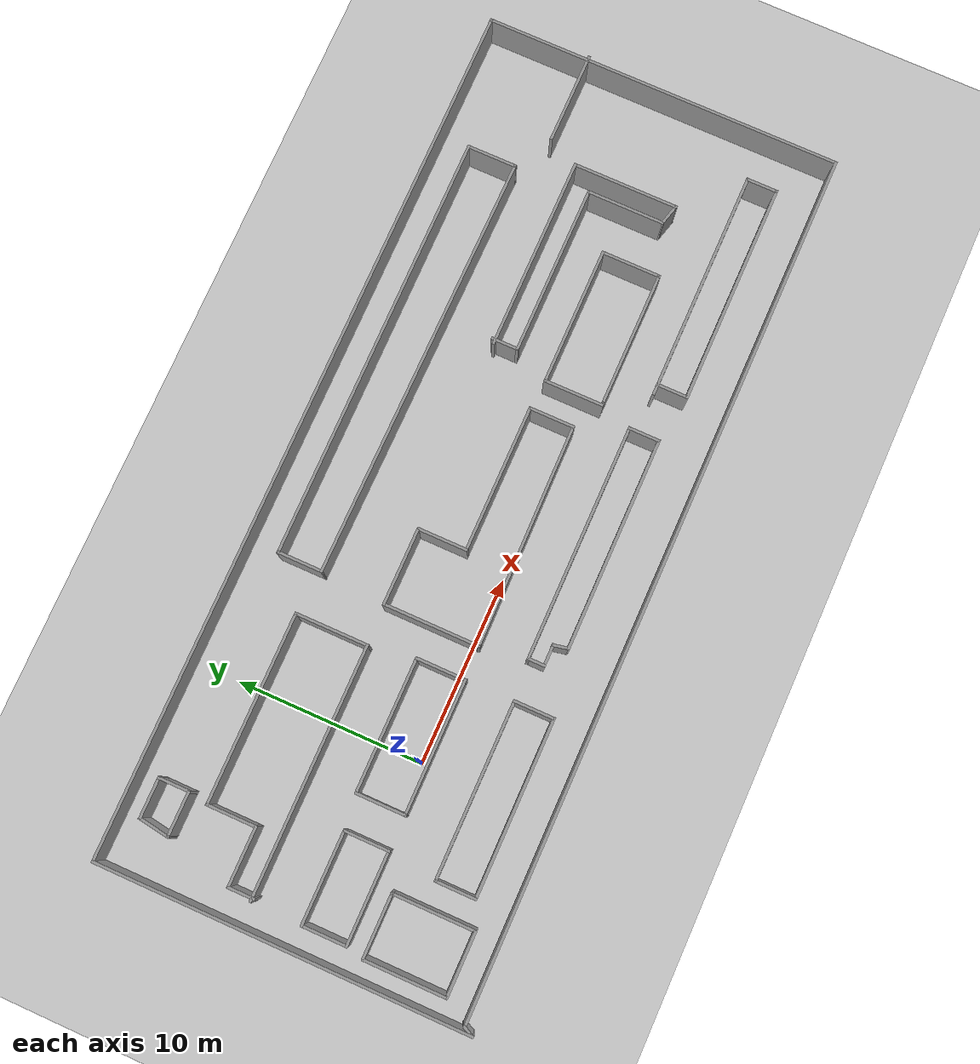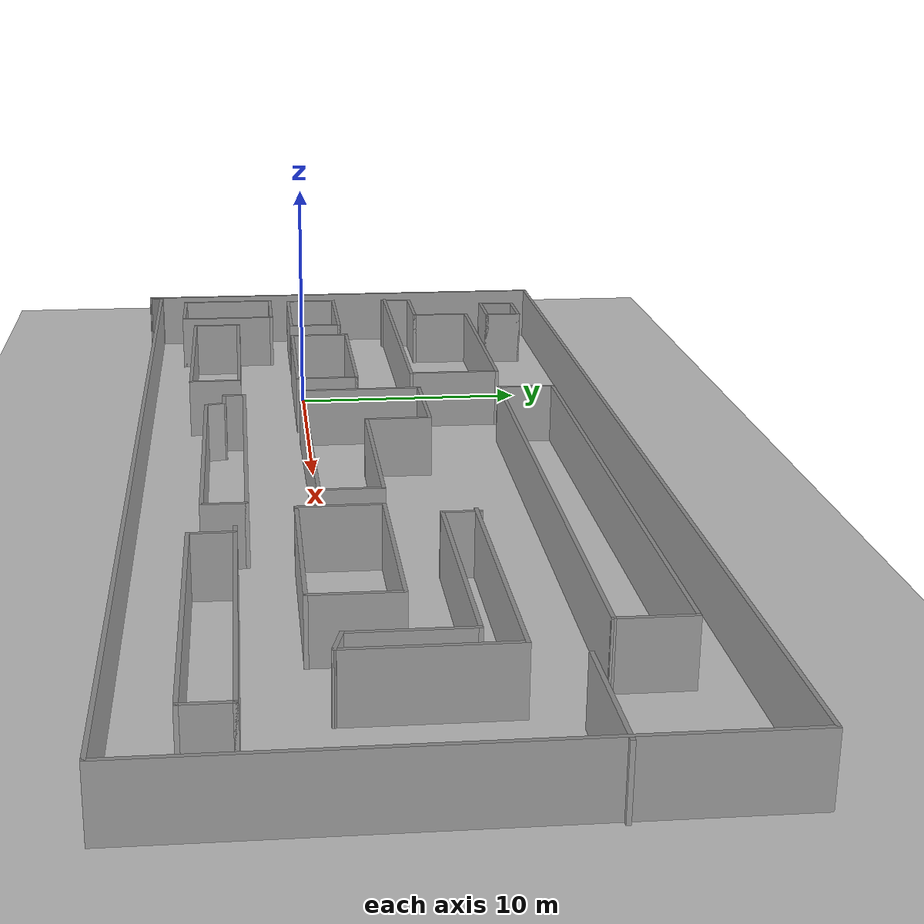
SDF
<sdf version="1.7">
 <world name="default">
  <light name="sun" type="directional">
   <pose>0 0 10 0 -0 0</pose>
   <diffuse>0.8 0.8 0.8 1</diffuse>
   <specular>0.2 0.2 0.2 1</specular>
   <attenuation>
    <range>1000</range>
    <constant>0.9</constant>
    <linear>0.01</linear>
    <quadratic>0.001</quadratic>
   </attenuation>
   <direction>-0.5 0.1 -0.9</direction>
   <spot><inner_angle>0</inner_angle><outer_angle>0</outer_angle><falloff>0</falloff></spot>
  </light>
  <model name="ground_plane">
   <static>1</static>
   <link name="link">
    <collision name="collision">
     <geometry><plane><normal>0 0 1</normal><size>100 100</size></plane></geometry>
     <surface>
      <contact><collide_bitmask>65535</collide_bitmask></contact>
      <friction><ode><mu>100</mu><mu2>50</mu2></ode></friction>
     </surface>
    </collision>
    <visual name="visual">
     <cast_shadows>0</cast_shadows>
     <geometry><plane><normal>0 0 1</normal><size>100 100</size></plane></geometry>
     <material>
      <script><uri>file://media/materials/scripts/gazebo.material</uri><name>Gazebo/Grey</name></script>
     </material>
    </visual>
   </link>
  </model>
  <gravity>0 0 -9.8</gravity>
  <magnetic_field>6e-06 2.3e-05 -4.2e-05</magnetic_field>
  <atmosphere type="adiabatic"/>
  <physics type="ode">
   <max_step_size>0.001</max_step_size>
   <real_time_factor>1</real_time_factor>
   <real_time_update_rate>1000</real_time_update_rate>
  </physics>
  <scene><ambient>0.4 0.4 0.4 1</ambient><background>0.7 0.7 0.7 1</background><shadows>1</shadows></scene>
  <spherical_coordinates>
   <surface_model>EARTH_WGS84</surface_model>
   <latitude_deg>0</latitude_deg>
   <longitude_deg>0</longitude_deg>
   <elevation>0</elevation>
   <heading_deg>0</heading_deg>
  </spherical_coordinates>
  <model name="factory">
   <pose>12.988 2.43219 0 0 -0 0</pose>
   <link name="Wall_0">
    <collision name="Wall_0_Collision">
     <geometry><box><size>47 0.15 2.5</size></box></geometry>
     <pose>0 0 1.25 0 -0 0</pose>
    </collision>
    <visual name="Wall_0_Visual">
     <pose>0 0 1.25 0 -0 0</pose>
     <geometry><box><size>47 0.15 2.5</size></box></geometry>
     <material>
      <script><uri>file://media/materials/scripts/gazebo.material</uri><name>Gazebo/Grey</name></script>
      <ambient>1 1 1 1</ambient>
     </material>
     <meta><layer>0</layer></meta>
    </visual>
    <pose>0.056954 -9.41219 0 0 -0 0</pose>
   </link>
   <link name="Wall_1">
    <collision name="Wall_1_Collision">
     <geometry><box><size>19.5 0.15 2.5</size></box></geometry>
     <pose>0 0 1.25 0 -0 0</pose>
    </collision>
    <visual name="Wall_1_Visual">
     <pose>0 0 1.25 0 -0 0</pose>
     <geometry><box><size>19.5 0.15 2.5</size></box></geometry>
     <material>
      <script><uri>file://media/materials/scripts/gazebo.material</uri><name>Gazebo/Grey</name></script>
      <ambient>1 1 1 1</ambient>
     </material>
     <meta><layer>0</layer></meta>
    </visual>
    <pose>23.482 0.262811 0 0 -0 1.5708</pose>
   </link>
   <link name="Wall_11">
    <collision name="Wall_11_Collision">
     <geometry><box><size>5 0.15 2.5</size></box></geometry>
     <pose>0 0 1.25 0 -0 0</pose>
    </collision>
    <visual name="Wall_11_Visual">
     <pose>0 0 1.25 0 -0 0</pose>
     <geometry><box><size>5 0.15 2.5</size></box></geometry>
     <material>
      <script><uri>file://media/materials/scripts/gazebo.material</uri><name>Gazebo/Grey</name></script>
      <ambient>1 1 1 1</ambient>
     </material>
     <meta><layer>0</layer></meta>
    </visual>
    <pose>-19.8383 -2.79319 0 0 -0 0</pose>
   </link>
   <link name="Wall_12">
    <collision name="Wall_12_Collision">
     <geometry><box><size>2.5 0.15 2.5</size></box></geometry>
     <pose>0 0 1.25 0 -0 0</pose>
    </collision>
    <visual name="Wall_12_Visual">
     <pose>0 0 1.25 0 -0 0</pose>
     <geometry><box><size>2.5 0.15 2.5</size></box></geometry>
     <material>
      <script><uri>file://media/materials/scripts/gazebo.material</uri><name>Gazebo/Grey</name></script>
      <ambient>1 1 1 1</ambient>
     </material>
     <meta><layer>0</layer></meta>
    </visual>
    <pose>-17.4133 -1.61819 0 0 -0 1.5708</pose>
   </link>
   <link name="Wall_13">
    <collision name="Wall_13_Collision">
     <geometry><box><size>5 0.15 2.5</size></box></geometry>
     <pose>0 0 1.25 0 -0 0</pose>
    </collision>
    <visual name="Wall_13_Visual">
     <pose>0 0 1.25 0 -0 0</pose>
     <geometry><box><size>5 0.15 2.5</size></box></geometry>
     <material>
      <script><uri>file://media/materials/scripts/gazebo.material</uri><name>Gazebo/Grey</name></script>
      <ambient>1 1 1 1</ambient>
     </material>
     <meta><layer>0</layer></meta>
    </visual>
    <pose>-19.8383 -0.44319 0 0 -0 3.14159</pose>
   </link>
   <link name="Wall_14">
    <collision name="Wall_14_Collision">
     <geometry><box><size>2.5 0.15 2.5</size></box></geometry>
     <pose>0 0 1.25 0 -0 0</pose>
    </collision>
    <visual name="Wall_14_Visual">
     <pose>0 0 1.25 0 -0 0</pose>
     <geometry><box><size>2.5 0.15 2.5</size></box></geometry>
     <material>
      <script><uri>file://media/materials/scripts/gazebo.material</uri><name>Gazebo/Grey</name></script>
      <ambient>1 1 1 1</ambient>
     </material>
     <meta><layer>0</layer></meta>
    </visual>
    <pose>-22.2633 -1.61819 0 0 -0 -1.5708</pose>
   </link>
   <link name="Wall_17">
    <collision name="Wall_17_Collision">
     <geometry><box><size>2.25 0.15 2.5</size></box></geometry>
     <pose>0 0 1.25 0 -0 0</pose>
    </collision>
    <visual name="Wall_17_Visual">
     <pose>0 0 1.25 0 -0 0</pose>
     <geometry><box><size>2.25 0.15 2.5</size></box></geometry>
     <material>
      <script><uri>file://media/materials/scripts/gazebo.material</uri><name>Gazebo/Grey</name></script>
      <ambient>1 1 1 1</ambient>
     </material>
     <meta><layer>0</layer></meta>
    </visual>
    <pose>-8.43657 -6.45141 0 0 -0 1.5708</pose>
   </link>
   <link name="Wall_18">
    <collision name="Wall_18_Collision">
     <geometry><box><size>9.5 0.15 2.5</size></box></geometry>
     <pose>0 0 1.25 0 -0 0</pose>
    </collision>
    <visual name="Wall_18_Visual">
     <pose>0 0 1.25 0 -0 0</pose>
     <geometry><box><size>9.5 0.15 2.5</size></box></geometry>
     <material>
      <script><uri>file://media/materials/scripts/gazebo.material</uri><name>Gazebo/Grey</name></script>
      <ambient>1 1 1 1</ambient>
     </material>
     <meta><layer>0</layer></meta>
    </visual>
    <pose>-13.1116 -5.40141 0 0 -0 3.14159</pose>
   </link>
   <link name="Wall_2">
    <collision name="Wall_2_Collision">
     <geometry><box><size>47.25 0.15 2.5</size></box></geometry>
     <pose>0 0 1.25 0 -0 0</pose>
    </collision>
    <visual name="Wall_2_Visual">
     <pose>0 0 1.25 0 -0 0</pose>
     <geometry><box><size>47.25 0.15 2.5</size></box></geometry>
     <material>
      <script><uri>file://media/materials/scripts/gazebo.material</uri><name>Gazebo/Grey</name></script>
      <ambient>1 1 1 1</ambient>
     </material>
     <meta><layer>0</layer></meta>
    </visual>
    <pose>-0.068046 9.93781 0 0 -0 3.14159</pose>
   </link>
   <link name="Wall_22">
    <collision name="Wall_22_Collision">
     <geometry><box><size>2.25 0.15 2.5</size></box></geometry>
     <pose>0 0 1.25 0 -0 0</pose>
    </collision>
    <visual name="Wall_22_Visual">
     <pose>0 0 1.25 0 -0 0</pose>
     <geometry><box><size>2.25 0.15 2.5</size></box></geometry>
     <material>
      <script><uri>file://media/materials/scripts/gazebo.material</uri><name>Gazebo/Grey</name></script>
      <ambient>1 1 1 1</ambient>
     </material>
     <meta><layer>0</layer></meta>
    </visual>
    <pose>-17.7866 -6.45141 0 0 -0 -1.5708</pose>
   </link>
   <link name="Wall_24">
    <collision name="Wall_24_Collision">
     <geometry><box><size>9.5 0.15 2.5</size></box></geometry>
     <pose>0 0 1.25 0 -0 0</pose>
    </collision>
    <visual name="Wall_24_Visual">
     <pose>0 0 1.25 0 -0 0</pose>
     <geometry><box><size>9.5 0.15 2.5</size></box></geometry>
     <material>
      <script><uri>file://media/materials/scripts/gazebo.material</uri><name>Gazebo/Grey</name></script>
      <ambient>1 1 1 1</ambient>
     </material>
     <meta><layer>0</layer></meta>
    </visual>
    <pose>-13.1116 -7.50141 0 0 -0 0</pose>
   </link>
   <link name="Wall_26">
    <collision name="Wall_26_Collision">
     <geometry><box><size>7.25 0.15 2.5</size></box></geometry>
     <pose>0 0 1.25 0 -0 0</pose>
    </collision>
    <visual name="Wall_26_Visual">
     <pose>0 0 1.25 0 -0 0</pose>
     <geometry><box><size>7.25 0.15 2.5</size></box></geometry>
     <material>
      <script><uri>file://media/materials/scripts/gazebo.material</uri><name>Gazebo/Grey</name></script>
      <ambient>1 1 1 1</ambient>
     </material>
     <meta><layer>0</layer></meta>
    </visual>
    <pose>-12.0166 -2.80882 0 0 -0 0</pose>
   </link>
   <link name="Wall_27">
    <collision name="Wall_27_Collision">
     <geometry><box><size>2.75 0.15 2.5</size></box></geometry>
     <pose>0 0 1.25 0 -0 0</pose>
    </collision>
    <visual name="Wall_27_Visual">
     <pose>0 0 1.25 0 -0 0</pose>
     <geometry><box><size>2.75 0.15 2.5</size></box></geometry>
     <material>
      <script><uri>file://media/materials/scripts/gazebo.material</uri><name>Gazebo/Grey</name></script>
      <ambient>1 1 1 1</ambient>
     </material>
     <meta><layer>0</layer></meta>
    </visual>
    <pose>-8.4666 -1.50882 0 0 -0 1.5708</pose>
   </link>
   <link name="Wall_28">
    <collision name="Wall_28_Collision">
     <geometry><box><size>7.25 0.15 2.5</size></box></geometry>
     <pose>0 0 1.25 0 -0 0</pose>
    </collision>
    <visual name="Wall_28_Visual">
     <pose>0 0 1.25 0 -0 0</pose>
     <geometry><box><size>7.25 0.15 2.5</size></box></geometry>
     <material>
      <script><uri>file://media/materials/scripts/gazebo.material</uri><name>Gazebo/Grey</name></script>
      <ambient>1 1 1 1</ambient>
     </material>
     <meta><layer>0</layer></meta>
    </visual>
    <pose>-12.0166 -0.208821 0 0 -0 3.14159</pose>
   </link>
   <link name="Wall_29">
    <collision name="Wall_29_Collision">
     <geometry><box><size>2.75 0.15 2.5</size></box></geometry>
     <pose>0 0 1.25 0 -0 0</pose>
    </collision>
    <visual name="Wall_29_Visual">
     <pose>0 0 1.25 0 -0 0</pose>
     <geometry><box><size>2.75 0.15 2.5</size></box></geometry>
     <material>
      <script><uri>file://media/materials/scripts/gazebo.material</uri><name>Gazebo/Grey</name></script>
      <ambient>1 1 1 1</ambient>
     </material>
     <meta><layer>0</layer></meta>
    </visual>
    <pose>-15.5666 -1.50882 0 0 -0 -1.5708</pose>
   </link>
   <link name="Wall_3">
    <collision name="Wall_3_Collision">
     <geometry><box><size>20 0.15 2.5</size></box></geometry>
     <pose>0 0 1.25 0 -0 0</pose>
    </collision>
    <visual name="Wall_3_Visual">
     <pose>0 0 1.25 0 -0 0</pose>
     <geometry><box><size>20 0.15 2.5</size></box></geometry>
     <material>
      <script><uri>file://media/materials/scripts/gazebo.material</uri><name>Gazebo/Grey</name></script>
      <ambient>1 1 1 1</ambient>
     </material>
     <meta><layer>0</layer></meta>
    </visual>
    <pose>-23.618 0.012811 0 0 -0 -1.5708</pose>
   </link>
   <link name="Wall_31">
    <collision name="Wall_31_Collision">
     <geometry><box><size>13.5 0.15 2.5</size></box></geometry>
     <pose>0 0 1.25 0 -0 0</pose>
    </collision>
    <visual name="Wall_31_Visual">
     <pose>0 0 1.25 0 -0 0</pose>
     <geometry><box><size>13.5 0.15 2.5</size></box></geometry>
     <material>
      <script><uri>file://media/materials/scripts/gazebo.material</uri><name>Gazebo/Grey</name></script>
      <ambient>1 1 1 1</ambient>
     </material>
     <meta><layer>0</layer></meta>
    </visual>
    <pose>-15.5451 2.25722 0 0 -0 0</pose>
   </link>
   <link name="Wall_32">
    <collision name="Wall_32_Collision">
     <geometry><box><size>4 0.15 2.5</size></box></geometry>
     <pose>0 0 1.25 0 -0 0</pose>
    </collision>
    <visual name="Wall_32_Visual">
     <pose>0 0 1.25 0 -0 0</pose>
     <geometry><box><size>4 0.15 2.5</size></box></geometry>
     <material>
      <script><uri>file://media/materials/scripts/gazebo.material</uri><name>Gazebo/Grey</name></script>
      <ambient>1 1 1 1</ambient>
     </material>
     <meta><layer>0</layer></meta>
    </visual>
    <pose>-8.87015 4.18222 0 0 -0 1.5708</pose>
   </link>
   <link name="Wall_33">
    <collision name="Wall_33_Collision">
     <geometry><box><size>10.25 0.15 2.5</size></box></geometry>
     <pose>0 0 1.25 0 -0 0</pose>
    </collision>
    <visual name="Wall_33_Visual">
     <pose>0 0 1.25 0 -0 0</pose>
     <geometry><box><size>10.25 0.15 2.5</size></box></geometry>
     <material>
      <script><uri>file://media/materials/scripts/gazebo.material</uri><name>Gazebo/Grey</name></script>
      <ambient>1 1 1 1</ambient>
     </material>
     <meta><layer>0</layer></meta>
    </visual>
    <pose>-13.9201 6.10722 0 0 -0 3.14159</pose>
   </link>
   <link name="Wall_34">
    <collision name="Wall_34_Collision">
     <geometry><box><size>2.75 0.15 2.5</size></box></geometry>
     <pose>0 0 1.25 0 -0 0</pose>
    </collision>
    <visual name="Wall_34_Visual">
     <pose>0 0 1.25 0 -0 0</pose>
     <geometry><box><size>2.75 0.15 2.5</size></box></geometry>
     <material>
      <script><uri>file://media/materials/scripts/gazebo.material</uri><name>Gazebo/Grey</name></script>
      <ambient>1 1 1 1</ambient>
     </material>
     <meta><layer>0</layer></meta>
    </visual>
    <pose>-18.9701 4.80722 0 0 -0 -1.5708</pose>
   </link>
   <link name="Wall_35">
    <collision name="Wall_35_Collision">
     <geometry><box><size>3.25 0.15 2.5</size></box></geometry>
     <pose>0 0 1.25 0 -0 0</pose>
    </collision>
    <visual name="Wall_35_Visual">
     <pose>0 0 1.25 0 -0 0</pose>
     <geometry><box><size>3.25 0.15 2.5</size></box></geometry>
     <material>
      <script><uri>file://media/materials/scripts/gazebo.material</uri><name>Gazebo/Grey</name></script>
      <ambient>1 1 1 1</ambient>
     </material>
     <meta><layer>0</layer></meta>
    </visual>
    <pose>-20.5201 3.50722 0 0 -0 3.14159</pose>
   </link>
   <link name="Wall_38">
    <collision name="Wall_38_Collision">
     <geometry><box><size>1.5 0.15 2.5</size></box></geometry>
     <pose>0 0 1.25 0 -0 0</pose>
    </collision>
    <visual name="Wall_38_Visual">
     <pose>0 0 1.25 0 -0 0</pose>
     <geometry><box><size>1.5 0.15 2.5</size></box></geometry>
     <material>
      <script><uri>file://media/materials/scripts/gazebo.material</uri><name>Gazebo/Grey</name></script>
      <ambient>1 1 1 1</ambient>
     </material>
     <meta><layer>0</layer></meta>
    </visual>
    <pose>-22.0701 2.83222 0 0 -0 -1.5708</pose>
   </link>
   <link name="Wall_4">
    <collision name="Wall_4_Collision">
     <geometry><box><size>0.709017 0.15 2.5</size></box></geometry>
     <pose>0 0 1.25 0 -0 0</pose>
    </collision>
    <visual name="Wall_4_Visual">
     <pose>0 0 1.25 0 -0 0</pose>
     <geometry><box><size>0.709017 0.15 2.5</size></box></geometry>
     <material>
      <script><uri>file://media/materials/scripts/gazebo.material</uri><name>Gazebo/Grey</name></script>
      <ambient>1 1 1 1</ambient>
     </material>
     <meta><layer>0</layer></meta>
    </visual>
    <pose>-23.493 -9.66219 0 0 -0 1.10715</pose>
   </link>
   <link name="Wall_40">
    <collision name="Wall_40_Collision">
     <geometry><box><size>2.5 0.15 2.5</size></box></geometry>
     <pose>0 0 1.25 0 -0 0</pose>
    </collision>
    <visual name="Wall_40_Visual">
     <pose>0 0 1.25 0 -0 0</pose>
     <geometry><box><size>2.5 0.15 2.5</size></box></geometry>
     <material>
      <script><uri>file://media/materials/scripts/gazebo.material</uri><name>Gazebo/Grey</name></script>
      <ambient>1 1 1 1</ambient>
     </material>
     <meta><layer>0</layer></meta>
    </visual>
    <pose>-19.9347 7.16944 0 0 -0 0</pose>
   </link>
   <link name="Wall_41">
    <collision name="Wall_41_Collision">
     <geometry><box><size>1.75 0.15 2.5</size></box></geometry>
     <pose>0 0 1.25 0 -0 0</pose>
    </collision>
    <visual name="Wall_41_Visual">
     <pose>0 0 1.25 0 -0 0</pose>
     <geometry><box><size>1.75 0.15 2.5</size></box></geometry>
     <material>
      <script><uri>file://media/materials/scripts/gazebo.material</uri><name>Gazebo/Grey</name></script>
      <ambient>1 1 1 1</ambient>
     </material>
     <meta><layer>0</layer></meta>
    </visual>
    <pose>-18.7597 7.96944 0 0 -0 1.5708</pose>
   </link>
   <link name="Wall_42">
    <collision name="Wall_42_Collision">
     <geometry><box><size>2.25 0.15 2.5</size></box></geometry>
     <pose>0 0 1.25 0 -0 0</pose>
    </collision>
    <visual name="Wall_42_Visual">
     <pose>0 0 1.25 0 -0 0</pose>
     <geometry><box><size>2.25 0.15 2.5</size></box></geometry>
     <material>
      <script><uri>file://media/materials/scripts/gazebo.material</uri><name>Gazebo/Grey</name></script>
      <ambient>1 1 1 1</ambient>
     </material>
     <meta><layer>0</layer></meta>
    </visual>
    <pose>-19.8097 8.76944 0 0 -0 3.14159</pose>
   </link>
   <link name="Wall_43">
    <collision name="Wall_43_Collision">
     <geometry><box><size>1.76941 0.15 2.5</size></box></geometry>
     <pose>0 0 1.25 0 -0 0</pose>
    </collision>
    <visual name="Wall_43_Visual">
     <pose>0 0 1.25 0 -0 0</pose>
     <geometry><box><size>1.76941 0.15 2.5</size></box></geometry>
     <material>
      <script><uri>file://media/materials/scripts/gazebo.material</uri><name>Gazebo/Grey</name></script>
      <ambient>1 1 1 1</ambient>
     </material>
     <meta><layer>0</layer></meta>
    </visual>
    <pose>-20.9847 7.96944 0 0 -0 -1.72579</pose>
   </link>
   <link name="Wall_45">
    <collision name="Wall_45_Collision">
     <geometry><box><size>5.25 0.15 2.5</size></box></geometry>
     <pose>0 0 1.25 0 -0 0</pose>
    </collision>
    <visual name="Wall_45_Visual">
     <pose>0 0 1.25 0 -0 0</pose>
     <geometry><box><size>5.25 0.15 2.5</size></box></geometry>
     <material>
      <script><uri>file://media/materials/scripts/gazebo.material</uri><name>Gazebo/Grey</name></script>
      <ambient>1 1 1 1</ambient>
     </material>
     <meta><layer>0</layer></meta>
    </visual>
    <pose>-6.69663 -0.195687 0 0 -0 1.5708</pose>
   </link>
   <link name="Wall_46">
    <collision name="Wall_46_Collision">
     <geometry><box><size>4.25 0.15 2.5</size></box></geometry>
     <pose>0 0 1.25 0 -0 0</pose>
    </collision>
    <visual name="Wall_46_Visual">
     <pose>0 0 1.25 0 -0 0</pose>
     <geometry><box><size>4.25 0.15 2.5</size></box></geometry>
     <material>
      <script><uri>file://media/materials/scripts/gazebo.material</uri><name>Gazebo/Grey</name></script>
      <ambient>1 1 1 1</ambient>
     </material>
     <meta><layer>0</layer></meta>
    </visual>
    <pose>-4.64663 2.35431 0 0 -0 0</pose>
   </link>
   <link name="Wall_47">
    <collision name="Wall_47_Collision">
     <geometry><box><size>2.75 0.15 2.5</size></box></geometry>
     <pose>0 0 1.25 0 -0 0</pose>
    </collision>
    <visual name="Wall_47_Visual">
     <pose>0 0 1.25 0 -0 0</pose>
     <geometry><box><size>2.75 0.15 2.5</size></box></geometry>
     <material>
      <script><uri>file://media/materials/scripts/gazebo.material</uri><name>Gazebo/Grey</name></script>
      <ambient>1 1 1 1</ambient>
     </material>
     <meta><layer>0</layer></meta>
    </visual>
    <pose>-2.59663 1.05431 0 0 -0 -1.5708</pose>
   </link>
   <link name="Wall_48">
    <collision name="Wall_48_Collision">
     <geometry><box><size>8 0.15 2.5</size></box></geometry>
     <pose>0 0 1.25 0 -0 0</pose>
    </collision>
    <visual name="Wall_48_Visual">
     <pose>0 0 1.25 0 -0 0</pose>
     <geometry><box><size>8 0.15 2.5</size></box></geometry>
     <material>
      <script><uri>file://media/materials/scripts/gazebo.material</uri><name>Gazebo/Grey</name></script>
      <ambient>1 1 1 1</ambient>
     </material>
     <meta><layer>0</layer></meta>
    </visual>
    <pose>1.32837 -0.245687 0 0 -0 0</pose>
   </link>
   <link name="Wall_49">
    <collision name="Wall_49_Collision">
     <geometry><box><size>2.5 0.15 2.5</size></box></geometry>
     <pose>0 0 1.25 0 -0 0</pose>
    </collision>
    <visual name="Wall_49_Visual">
     <pose>0 0 1.25 0 -0 0</pose>
     <geometry><box><size>2.5 0.15 2.5</size></box></geometry>
     <material>
      <script><uri>file://media/materials/scripts/gazebo.material</uri><name>Gazebo/Grey</name></script>
      <ambient>1 1 1 1</ambient>
     </material>
     <meta><layer>0</layer></meta>
    </visual>
    <pose>5.25337 -1.42069 0 0 -0 -1.5708</pose>
   </link>
   <link name="Wall_50">
    <collision name="Wall_50_Collision">
     <geometry><box><size>12.1009 0.15 2.5</size></box></geometry>
     <pose>0 0 1.25 0 -0 0</pose>
    </collision>
    <visual name="Wall_50_Visual">
     <pose>0 0 1.25 0 -0 0</pose>
     <geometry><box><size>12.1009 0.15 2.5</size></box></geometry>
     <material>
      <script><uri>file://media/materials/scripts/gazebo.material</uri><name>Gazebo/Grey</name></script>
      <ambient>1 1 1 1</ambient>
     </material>
     <meta><layer>0</layer></meta>
    </visual>
    <pose>-0.721629 -2.67069 0 0 -0 -3.12904</pose>
   </link>
   <link name="Wall_52">
    <collision name="Wall_52_Collision">
     <geometry><box><size>11.5 0.15 2.5</size></box></geometry>
     <pose>0 0 1.25 0 -0 0</pose>
    </collision>
    <visual name="Wall_52_Visual">
     <pose>0 0 1.25 0 -0 0</pose>
     <geometry><box><size>11.5 0.15 2.5</size></box></geometry>
     <material>
      <script><uri>file://media/materials/scripts/gazebo.material</uri><name>Gazebo/Grey</name></script>
      <ambient>1 1 1 1</ambient>
     </material>
     <meta><layer>0</layer></meta>
    </visual>
    <pose>0.653232 -6.79327 0 0 -0 0</pose>
   </link>
   <link name="Wall_53">
    <collision name="Wall_53_Collision">
     <geometry><box><size>1.75 0.15 2.5</size></box></geometry>
     <pose>0 0 1.25 0 -0 0</pose>
    </collision>
    <visual name="Wall_53_Visual">
     <pose>0 0 1.25 0 -0 0</pose>
     <geometry><box><size>1.75 0.15 2.5</size></box></geometry>
     <material>
      <script><uri>file://media/materials/scripts/gazebo.material</uri><name>Gazebo/Grey</name></script>
      <ambient>1 1 1 1</ambient>
     </material>
     <meta><layer>0</layer></meta>
    </visual>
    <pose>6.32823 -5.99327 0 0 -0 1.5708</pose>
   </link>
   <link name="Wall_54">
    <collision name="Wall_54_Collision">
     <geometry><box><size>12.75 0.15 2.5</size></box></geometry>
     <pose>0 0 1.25 0 -0 0</pose>
    </collision>
    <visual name="Wall_54_Visual">
     <pose>0 0 1.25 0 -0 0</pose>
     <geometry><box><size>12.75 0.15 2.5</size></box></geometry>
     <material>
      <script><uri>file://media/materials/scripts/gazebo.material</uri><name>Gazebo/Grey</name></script>
      <ambient>1 1 1 1</ambient>
     </material>
     <meta><layer>0</layer></meta>
    </visual>
    <pose>0.028232 -5.19327 0 0 -0 3.14159</pose>
   </link>
   <link name="Wall_55">
    <collision name="Wall_55_Collision">
     <geometry><box><size>1 0.15 2.5</size></box></geometry>
     <pose>0 0 1.25 0 -0 0</pose>
    </collision>
    <visual name="Wall_55_Visual">
     <pose>0 0 1.25 0 -0 0</pose>
     <geometry><box><size>1 0.15 2.5</size></box></geometry>
     <material>
      <script><uri>file://media/materials/scripts/gazebo.material</uri><name>Gazebo/Grey</name></script>
      <ambient>1 1 1 1</ambient>
     </material>
     <meta><layer>0</layer></meta>
    </visual>
    <pose>-6.27177 -5.61827 0 0 -0 -1.5708</pose>
   </link>
   <link name="Wall_56">
    <collision name="Wall_56_Collision">
     <geometry><box><size>1.25 0.15 2.5</size></box></geometry>
     <pose>0 0 1.25 0 -0 0</pose>
    </collision>
    <visual name="Wall_56_Visual">
     <pose>0 0 1.25 0 -0 0</pose>
     <geometry><box><size>1.25 0.15 2.5</size></box></geometry>
     <material>
      <script><uri>file://media/materials/scripts/gazebo.material</uri><name>Gazebo/Grey</name></script>
      <ambient>1 1 1 1</ambient>
     </material>
     <meta><layer>0</layer></meta>
    </visual>
    <pose>-5.72177 -6.04327 0 0 -0 0</pose>
   </link>
   <link name="Wall_57">
    <collision name="Wall_57_Collision">
     <geometry><box><size>0.914853 0.15 2.5</size></box></geometry>
     <pose>0 0 1.25 0 -0 0</pose>
    </collision>
    <visual name="Wall_57_Visual">
     <pose>0 0 1.25 0 -0 0</pose>
     <geometry><box><size>0.914853 0.15 2.5</size></box></geometry>
     <material>
      <script><uri>file://media/materials/scripts/gazebo.material</uri><name>Gazebo/Grey</name></script>
      <ambient>1 1 1 1</ambient>
     </material>
     <meta><layer>0</layer></meta>
    </visual>
    <pose>-5.09677 -6.41827 0 0 -0 -1.3734</pose>
   </link>
   <link name="Wall_59">
    <collision name="Wall_59_Collision">
     <geometry><box><size>2.5 0.15 2.5</size></box></geometry>
     <pose>0 0 1.25 0 -0 0</pose>
    </collision>
    <visual name="Wall_59_Visual">
     <pose>0 0 1.25 0 -0 0</pose>
     <geometry><box><size>2.5 0.15 2.5</size></box></geometry>
     <material>
      <script><uri>file://media/materials/scripts/gazebo.material</uri><name>Gazebo/Grey</name></script>
      <ambient>1 1 1 1</ambient>
     </material>
     <meta><layer>0</layer></meta>
    </visual>
    <pose>-6.46342 7.01271 0 0 -0 1.5708</pose>
   </link>
   <link name="Wall_6">
    <collision name="Wall_6_Collision">
     <geometry><box><size>3.5 0.15 2.5</size></box></geometry>
     <pose>0 0 1.25 0 -0 0</pose>
    </collision>
    <visual name="Wall_6_Visual">
     <pose>0 0 1.25 0 -0 0</pose>
     <geometry><box><size>3.5 0.15 2.5</size></box></geometry>
     <material>
      <script><uri>file://media/materials/scripts/gazebo.material</uri><name>Gazebo/Grey</name></script>
      <ambient>1 1 1 1</ambient>
     </material>
     <meta><layer>0</layer></meta>
    </visual>
    <pose>-20.8292 -8.09907 0 0 -0 0</pose>
   </link>
   <link name="Wall_60">
    <collision name="Wall_60_Collision">
     <geometry><box><size>23.25 0.15 2.5</size></box></geometry>
     <pose>0 0 1.25 0 -0 0</pose>
    </collision>
    <visual name="Wall_60_Visual">
     <pose>0 0 1.25 0 -0 0</pose>
     <geometry><box><size>23.25 0.15 2.5</size></box></geometry>
     <material>
      <script><uri>file://media/materials/scripts/gazebo.material</uri><name>Gazebo/Grey</name></script>
      <ambient>1 1 1 1</ambient>
     </material>
     <meta><layer>0</layer></meta>
    </visual>
    <pose>5.08658 8.18771 0 0 -0 0</pose>
   </link>
   <link name="Wall_61">
    <collision name="Wall_61_Collision">
     <geometry><box><size>2.75 0.15 2.5</size></box></geometry>
     <pose>0 0 1.25 0 -0 0</pose>
    </collision>
    <visual name="Wall_61_Visual">
     <pose>0 0 1.25 0 -0 0</pose>
     <geometry><box><size>2.75 0.15 2.5</size></box></geometry>
     <material>
      <script><uri>file://media/materials/scripts/gazebo.material</uri><name>Gazebo/Grey</name></script>
      <ambient>1 1 1 1</ambient>
     </material>
     <meta><layer>0</layer></meta>
    </visual>
    <pose>16.6366 6.88771 0 0 -0 -1.5708</pose>
   </link>
   <link name="Wall_62">
    <collision name="Wall_62_Collision">
     <geometry><box><size>23.2514 0.15 2.5</size></box></geometry>
     <pose>0 0 1.25 0 -0 0</pose>
    </collision>
    <visual name="Wall_62_Visual">
     <pose>0 0 1.25 0 -0 0</pose>
     <geometry><box><size>23.2514 0.15 2.5</size></box></geometry>
     <material>
      <script><uri>file://media/materials/scripts/gazebo.material</uri><name>Gazebo/Grey</name></script>
      <ambient>1 1 1 1</ambient>
     </material>
     <meta><layer>0</layer></meta>
    </visual>
    <pose>5.08658 5.71271 0 0 -0 3.13077</pose>
   </link>
   <link name="Wall_64">
    <collision name="Wall_64_Collision">
     <geometry><box><size>10.5 0.15 2.5</size></box></geometry>
     <pose>0 0 1.25 0 -0 0</pose>
    </collision>
    <visual name="Wall_64_Visual">
     <pose>0 0 1.25 0 -0 0</pose>
     <geometry><box><size>10.5 0.15 2.5</size></box></geometry>
     <material>
      <script><uri>file://media/materials/scripts/gazebo.material</uri><name>Gazebo/Grey</name></script>
      <ambient>1 1 1 1</ambient>
     </material>
     <meta><layer>0</layer></meta>
    </visual>
    <pose>12.7827 2.78807 0 0 -0 0</pose>
   </link>
   <link name="Wall_65">
    <collision name="Wall_65_Collision">
     <geometry><box><size>5.75 0.15 2.5</size></box></geometry>
     <pose>0 0 1.25 0 -0 0</pose>
    </collision>
    <visual name="Wall_65_Visual">
     <pose>0 0 1.25 0 -0 0</pose>
     <geometry><box><size>5.75 0.15 2.5</size></box></geometry>
     <material>
      <script><uri>file://media/materials/scripts/gazebo.material</uri><name>Gazebo/Grey</name></script>
      <ambient>1 1 1 1</ambient>
     </material>
     <meta><layer>0</layer></meta>
    </visual>
    <pose>17.9577 -0.011929 0 0 -0 -1.5708</pose>
   </link>
   <link name="Wall_66">
    <collision name="Wall_66_Collision">
     <geometry><box><size>1.25 0.15 2.5</size></box></geometry>
     <pose>0 0 1.25 0 -0 0</pose>
    </collision>
    <visual name="Wall_66_Visual">
     <pose>0 0 1.25 0 -0 0</pose>
     <geometry><box><size>1.25 0.15 2.5</size></box></geometry>
     <material>
      <script><uri>file://media/materials/scripts/gazebo.material</uri><name>Gazebo/Grey</name></script>
      <ambient>1 1 1 1</ambient>
     </material>
     <meta><layer>0</layer></meta>
    </visual>
    <pose>17.4265 -2.66958 0 0 -0 2.87979</pose>
   </link>
   <link name="Wall_67">
    <collision name="Wall_67_Collision">
     <geometry><box><size>4.25 0.15 2.5</size></box></geometry>
     <pose>0 0 1.25 0 -0 0</pose>
    </collision>
    <visual name="Wall_67_Visual">
     <pose>0 0 1.25 0 -0 0</pose>
     <geometry><box><size>4.25 0.15 2.5</size></box></geometry>
     <material>
      <script><uri>file://media/materials/scripts/gazebo.material</uri><name>Gazebo/Grey</name></script>
      <ambient>1 1 1 1</ambient>
     </material>
     <meta><layer>0</layer></meta>
    </visual>
    <pose>16.8952 -0.477228 0 0 -0 1.5708</pose>
   </link>
   <link name="Wall_68">
    <collision name="Wall_68_Collision">
     <geometry><box><size>9.25 0.15 2.5</size></box></geometry>
     <pose>0 0 1.25 0 -0 0</pose>
    </collision>
    <visual name="Wall_68_Visual">
     <pose>0 0 1.25 0 -0 0</pose>
     <geometry><box><size>9.25 0.15 2.5</size></box></geometry>
     <material>
      <script><uri>file://media/materials/scripts/gazebo.material</uri><name>Gazebo/Grey</name></script>
      <ambient>1 1 1 1</ambient>
     </material>
     <meta><layer>0</layer></meta>
    </visual>
    <pose>12.3452 1.57277 0 0 -0 3.14159</pose>
   </link>
   <link name="Wall_69">
    <collision name="Wall_69_Collision">
     <geometry><box><size>1.5 0.15 2.5</size></box></geometry>
     <pose>0 0 1.25 0 -0 0</pose>
    </collision>
    <visual name="Wall_69_Visual">
     <pose>0 0 1.25 0 -0 0</pose>
     <geometry><box><size>1.5 0.15 2.5</size></box></geometry>
     <material>
      <script><uri>file://media/materials/scripts/gazebo.material</uri><name>Gazebo/Grey</name></script>
      <ambient>1 1 1 1</ambient>
     </material>
     <meta><layer>0</layer></meta>
    </visual>
    <pose>7.79522 2.24777 0 0 -0 1.5708</pose>
   </link>
   <link name="Wall_7">
    <collision name="Wall_7_Collision">
     <geometry><box><size>4.5 0.15 2.5</size></box></geometry>
     <pose>0 0 1.25 0 -0 0</pose>
    </collision>
    <visual name="Wall_7_Visual">
     <pose>0 0 1.25 0 -0 0</pose>
     <geometry><box><size>4.5 0.15 2.5</size></box></geometry>
     <material>
      <script><uri>file://media/materials/scripts/gazebo.material</uri><name>Gazebo/Grey</name></script>
      <ambient>1 1 1 1</ambient>
     </material>
     <meta><layer>0</layer></meta>
    </visual>
    <pose>-19.1542 -5.92407 0 0 -0 1.5708</pose>
   </link>
   <link name="Wall_71">
    <collision name="Wall_71_Collision">
     <geometry><box><size>3.25 0.15 2.5</size></box></geometry>
     <pose>0 0 1.25 0 -0 0</pose>
    </collision>
    <visual name="Wall_71_Visual">
     <pose>0 0 1.25 0 -0 0</pose>
     <geometry><box><size>3.25 0.15 2.5</size></box></geometry>
     <material>
      <script><uri>file://media/materials/scripts/gazebo.material</uri><name>Gazebo/Grey</name></script>
      <ambient>1 1 1 1</ambient>
     </material>
     <meta><layer>0</layer></meta>
    </visual>
    <pose>6.8587 -1.92172 0 0 -0 1.5708</pose>
   </link>
   <link name="Wall_72">
    <collision name="Wall_72_Collision">
     <geometry><box><size>7.5 0.15 2.5</size></box></geometry>
     <pose>0 0 1.25 0 -0 0</pose>
    </collision>
    <visual name="Wall_72_Visual">
     <pose>0 0 1.25 0 -0 0</pose>
     <geometry><box><size>7.5 0.15 2.5</size></box></geometry>
     <material>
      <script><uri>file://media/materials/scripts/gazebo.material</uri><name>Gazebo/Grey</name></script>
      <ambient>1 1 1 1</ambient>
     </material>
     <meta><layer>0</layer></meta>
    </visual>
    <pose>10.5337 -0.371722 0 0 -0 0</pose>
   </link>
   <link name="Wall_73">
    <collision name="Wall_73_Collision">
     <geometry><box><size>3.25 0.15 2.5</size></box></geometry>
     <pose>0 0 1.25 0 -0 0</pose>
    </collision>
    <visual name="Wall_73_Visual">
     <pose>0 0 1.25 0 -0 0</pose>
     <geometry><box><size>3.25 0.15 2.5</size></box></geometry>
     <material>
      <script><uri>file://media/materials/scripts/gazebo.material</uri><name>Gazebo/Grey</name></script>
      <ambient>1 1 1 1</ambient>
     </material>
     <meta><layer>0</layer></meta>
    </visual>
    <pose>14.2087 -1.92172 0 0 -0 -1.5708</pose>
   </link>
   <link name="Wall_74">
    <collision name="Wall_74_Collision">
     <geometry><box><size>7.25 0.15 2.5</size></box></geometry>
     <pose>0 0 1.25 0 -0 0</pose>
    </collision>
    <visual name="Wall_74_Visual">
     <pose>0 0 1.25 0 -0 0</pose>
     <geometry><box><size>7.25 0.15 2.5</size></box></geometry>
     <material>
      <script><uri>file://media/materials/scripts/gazebo.material</uri><name>Gazebo/Grey</name></script>
      <ambient>1 1 1 1</ambient>
     </material>
     <meta><layer>0</layer></meta>
    </visual>
    <pose>10.6587 -3.47172 0 0 -0 3.14159</pose>
   </link>
   <link name="Wall_76">
    <collision name="Wall_76_Collision">
     <geometry><box><size>12.5 0.15 2.5</size></box></geometry>
     <pose>0 0 1.25 0 -0 0</pose>
    </collision>
    <visual name="Wall_76_Visual">
     <pose>0 0 1.25 0 -0 0</pose>
     <geometry><box><size>12.5 0.15 2.5</size></box></geometry>
     <material>
      <script><uri>file://media/materials/scripts/gazebo.material</uri><name>Gazebo/Grey</name></script>
      <ambient>1 1 1 1</ambient>
     </material>
     <meta><layer>0</layer></meta>
    </visual>
    <pose>14.6388 -5.61182 0 0 -0 0</pose>
   </link>
   <link name="Wall_77">
    <collision name="Wall_77_Collision">
     <geometry><box><size>1.75 0.15 2.5</size></box></geometry>
     <pose>0 0 1.25 0 -0 0</pose>
    </collision>
    <visual name="Wall_77_Visual">
     <pose>0 0 1.25 0 -0 0</pose>
     <geometry><box><size>1.75 0.15 2.5</size></box></geometry>
     <material>
      <script><uri>file://media/materials/scripts/gazebo.material</uri><name>Gazebo/Grey</name></script>
      <ambient>1 1 1 1</ambient>
     </material>
     <meta><layer>0</layer></meta>
    </visual>
    <pose>20.8138 -6.41182 0 0 -0 -1.5708</pose>
   </link>
   <link name="Wall_78">
    <collision name="Wall_78_Collision">
     <geometry><box><size>12 0.15 2.5</size></box></geometry>
     <pose>0 0 1.25 0 -0 0</pose>
    </collision>
    <visual name="Wall_78_Visual">
     <pose>0 0 1.25 0 -0 0</pose>
     <geometry><box><size>12 0.15 2.5</size></box></geometry>
     <material>
      <script><uri>file://media/materials/scripts/gazebo.material</uri><name>Gazebo/Grey</name></script>
      <ambient>1 1 1 1</ambient>
     </material>
     <meta><layer>0</layer></meta>
    </visual>
    <pose>14.8888 -7.21182 0 0 -0 3.14159</pose>
   </link>
   <link name="Wall_79">
    <collision name="Wall_79_Collision">
     <geometry><box><size>1.75 0.15 2.5</size></box></geometry>
     <pose>0 0 1.25 0 -0 0</pose>
    </collision>
    <visual name="Wall_79_Visual">
     <pose>0 0 1.25 0 -0 0</pose>
     <geometry><box><size>1.75 0.15 2.5</size></box></geometry>
     <material>
      <script><uri>file://media/materials/scripts/gazebo.material</uri><name>Gazebo/Grey</name></script>
      <ambient>1 1 1 1</ambient>
     </material>
     <meta><layer>0</layer></meta>
    </visual>
    <pose>8.96378 -6.41182 0 0 -0 1.5708</pose>
   </link>
   <link name="Wall_8">
    <collision name="Wall_8_Collision">
     <geometry><box><size>3.5 0.15 2.5</size></box></geometry>
     <pose>0 0 1.25 0 -0 0</pose>
    </collision>
    <visual name="Wall_8_Visual">
     <pose>0 0 1.25 0 -0 0</pose>
     <geometry><box><size>3.5 0.15 2.5</size></box></geometry>
     <material>
      <script><uri>file://media/materials/scripts/gazebo.material</uri><name>Gazebo/Grey</name></script>
      <ambient>1 1 1 1</ambient>
     </material>
     <meta><layer>0</layer></meta>
    </visual>
    <pose>-20.8292 -3.74907 0 0 -0 3.14159</pose>
   </link>
   <link name="Wall_81">
    <collision name="Wall_81_Collision">
     <geometry><box><size>5 0.15 2.5</size></box></geometry>
     <pose>0 0 1.25 0 -0 0</pose>
    </collision>
    <visual name="Wall_81_Visual">
     <pose>0 0 1.25 0 -0 0</pose>
     <geometry><box><size>5 0.15 2.5</size></box></geometry>
     <material>
      <script><uri>file://media/materials/scripts/gazebo.material</uri><name>Gazebo/Grey</name></script>
      <ambient>1 1 1 1</ambient>
     </material>
     <meta><layer>0</layer></meta>
    </visual>
    <pose>21.2187 4.47057 0 0 -0 0</pose>
   </link>
   <link name="Wall_9">
    <collision name="Wall_9_Collision">
     <geometry><box><size>4.5 0.15 2.5</size></box></geometry>
     <pose>0 0 1.25 0 -0 0</pose>
    </collision>
    <visual name="Wall_9_Visual">
     <pose>0 0 1.25 0 -0 0</pose>
     <geometry><box><size>4.5 0.15 2.5</size></box></geometry>
     <material>
      <script><uri>file://media/materials/scripts/gazebo.material</uri><name>Gazebo/Grey</name></script>
      <ambient>1 1 1 1</ambient>
     </material>
     <meta><layer>0</layer></meta>
    </visual>
    <pose>-22.5042 -5.92407 0 0 -0 -1.5708</pose>
   </link>
   <static>1</static>
  </model>
 </world>
</sdf>
